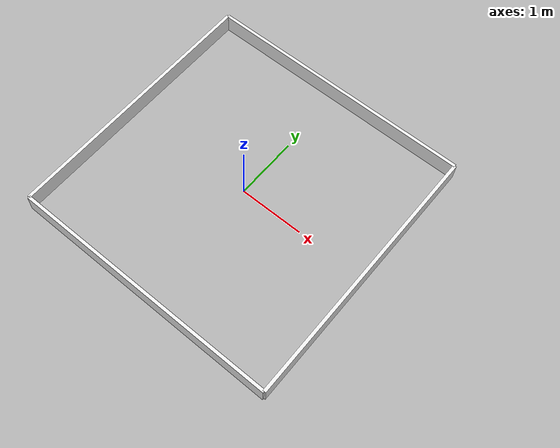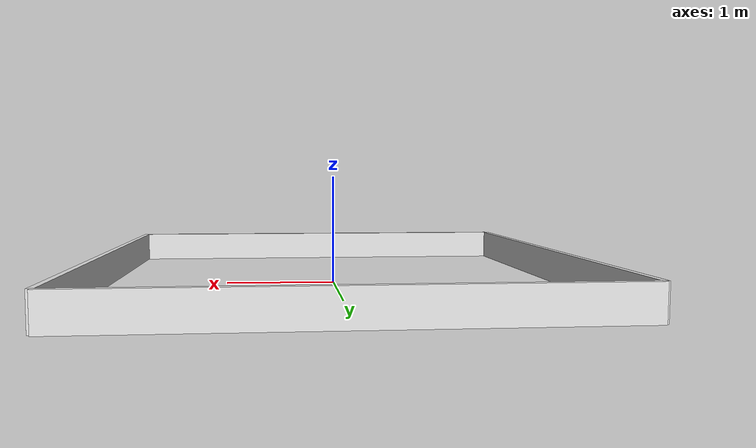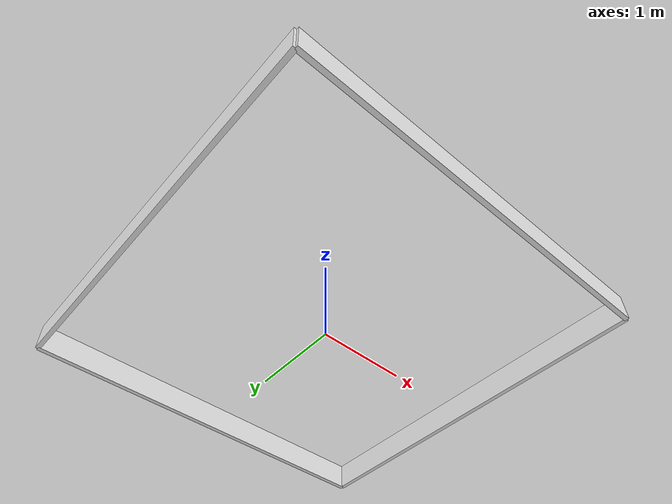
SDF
<?xml version="1.0"?>
<sdf version="1.6">
  <model name="field_frame">
    <static>true</static>

    <link name="wall_north">
      <pose>0 2.1 0.15 0 0 0</pose>
      <collision name="collision"><geometry><box><size>4.2 0.05 0.3</size></box></geometry></collision>
      <visual name="visual">
        <geometry><box><size>4.2 0.05 0.3</size></box></geometry>
        <material><script><uri>file://media/materials/scripts/gazebo.material</uri><name>Gazebo/White</name></script></material>
      </visual>
    </link>

    <link name="wall_south">
      <pose>0 -2.1 0.15 0 0 0</pose>
      <collision name="collision"><geometry><box><size>4.2 0.05 0.3</size></box></geometry></collision>
      <visual name="visual">
        <geometry><box><size>4.2 0.05 0.3</size></box></geometry>
        <material><script><uri>file://media/materials/scripts/gazebo.material</uri><name>Gazebo/White</name></script></material>
      </visual>
    </link>

    <link name="wall_east">
      <pose>2.1 0 0.15 0 0 0</pose>
      <collision name="collision"><geometry><box><size>0.05 4.2 0.3</size></box></geometry></collision>
      <visual name="visual">
        <geometry><box><size>0.05 4.2 0.3</size></box></geometry>
        <material><script><uri>file://media/materials/scripts/gazebo.material</uri><name>Gazebo/White</name></script></material>
      </visual>
    </link>

    <link name="wall_west">
      <pose>-2.1 0 0.15 0 0 0</pose>
      <collision name="collision"><geometry><box><size>0.05 4.2 0.3</size></box></geometry></collision>
      <visual name="visual">
        <geometry><box><size>0.05 4.2 0.3</size></box></geometry>
        <material><script><uri>file://media/materials/scripts/gazebo.material</uri><name>Gazebo/White</name></script></material>
      </visual>
    </link>

  </model>
</sdf>
